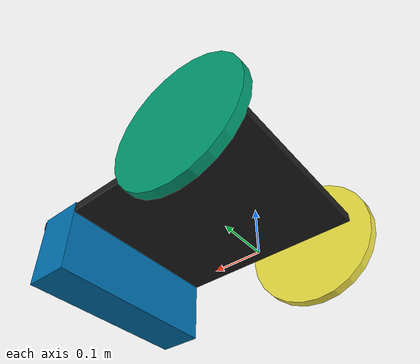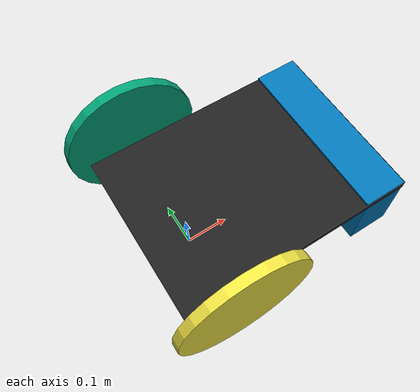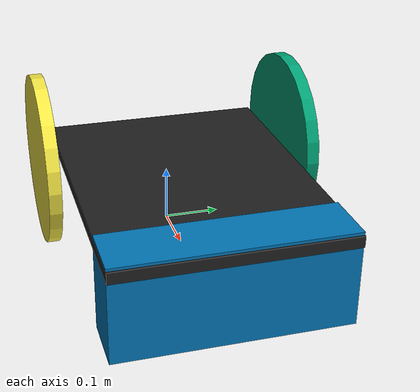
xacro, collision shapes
<?xml version="1.0" ?>
<robot name="orne_box" xmlns:xacro="http://ros.org/wiki/xacro">
  <xacro:include filename="$(find orne_sim_description)/urdf/common_properties.xacro"/>
  <xacro:include filename="$(find orne_sim_description)/urdf/orne_box.gazebo.xacro"/>

  <link name="base_footprint"/>

  <joint name="base_joint" type="fixed">
    <parent link="base_footprint"/>
    <child link="base_link"/>
    <origin xyz="0.0 0.0 0.152" rpy="0 0 0"/>
  </joint>

  <link name="base_link">
    <visual>
      <origin xyz="0.0 0 -0.152" rpy="0 0 0"/>
      <geometry>
        <mesh filename="package://orne_sim_description/meshes/bases/orne_box_base.stl" scale="1 1 1"/>
      </geometry>
      <material name="light_black"/>
    </visual>

    <collision>
      <origin xyz="0.158 0 0" rpy="0 0 0"/>
      <geometry>
        <box size="0.540 0.40 0.02"/>
      </geometry>
    </collision>

    <inertial>
      <origin xyz="0 0 0" rpy="0 0 0"/>
      <mass value="15.0"/>
      <inertia ixx="0.001" ixy="0.0" ixz="0.0"
               iyy="0.001" iyz="0.0"
               izz="0.001" />
    </inertial>
  </link>

  <joint name="wheel_left_joint" type="continuous">
    <parent link="base_link"/>
    <child link="wheel_left_link"/>
    <origin xyz="0.0 0.23075 0.0" rpy="-1.57 0 0"/>
    <axis xyz="0 0 1"/>
  </joint>

  <link name="wheel_left_link">
    <visual>
      <origin xyz="0 0 0" rpy="0 3.14 0"/>
      <geometry>
        <mesh filename="package://orne_sim_description/meshes/wheels/tire.stl" scale="1 1 1"/>
      </geometry>
      <material name="dark"/>
    </visual>

    <collision>
      <origin xyz="0 0 0" rpy="0 0 0"/>
      <geometry>
        <cylinder length="0.0225" radius="0.152"/>
      </geometry>
    </collision>

    <inertial>
      <origin xyz="0 0 0" />
      <mass value="0.2" />
        <inertia ixx="0.001" ixy="0.0" ixz="0.0"
                 iyy="0.001" iyz="0.0"
                 izz="0.001" />
    </inertial>

  </link>

  <joint name="wheel_right_joint" type="continuous">
    <parent link="base_link"/>
    <child link="wheel_right_link"/>
    <origin xyz="0.0 -0.23075 0.0" rpy="-1.57 0 0"/>
    <axis xyz="0 0 1"/>
  </joint>

  <link name="wheel_right_link">
    <visual>
      <origin xyz="0 0 0" rpy="0 0 0"/>
      <geometry>
        <mesh filename="package://orne_sim_description/meshes/wheels/tire.stl" scale="1 1 1"/>
      </geometry>
      <material name="dark"/>
    </visual>

    <collision>
      <origin xyz="0 0 0" rpy="0 0 0"/>
      <geometry>
        <cylinder length="0.0225" radius="0.152"/>
      </geometry>
    </collision>

      <inertial>
        <origin xyz="0 0 0" />
        <mass value="0.2" />
        <inertia ixx="0.001" ixy="0.0" ixz="0.0"
                 iyy="0.001" iyz="0.0"
                 izz="0.001" />
      </inertial>

  </link>

  <joint name="caster_front_joint" type="fixed">
    <parent link="base_link"/>
    <child link="caster_front_link"/>
    <origin xyz="0.374295 0 0.015" rpy="-3.14 0 0"/>
  </joint>

  <link name="caster_front_link">
    <collision>
      <origin xyz="0 0.0 0.0835" rpy="0 0 0"/>
      <geometry>
        <box size="0.10 0.4 0.167"/>
      </geometry>
    </collision>

    <inertial>
      <origin xyz="0 0 0" />
      <mass value="1.0" />
      <inertia ixx="0.001" ixy="0.0" ixz="0.0"
               iyy="0.001" iyz="0.0"
               izz="0.001" />
    </inertial>
  </link>

  <joint name="imu_joint" type="fixed">
    <parent link="base_link"/>
    <child link="imu_link"/>
    <origin xyz="0 0 0" rpy="0 0 0"/>
  </joint>

  <link name="imu_link"/>

  <joint name="scan_joint" type="fixed">
    <parent link="base_link"/>
    <child link="base_scan"/>
    <origin xyz="0.374295 0 0.1225" rpy="-3.14 0 0"/>
  </joint>

  <link name="base_scan">

    <inertial>
      <mass value="0.08" />
      <origin xyz="0 0 0" />
      <inertia ixx="0.001" ixy="0.0" ixz="0.0"
               iyy="0.001" iyz="0.0"
               izz="0.001" />
    </inertial>
  </link>

</robot>
